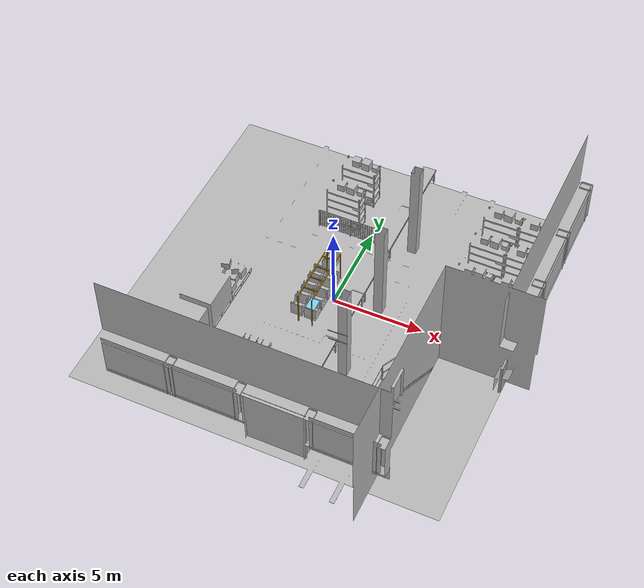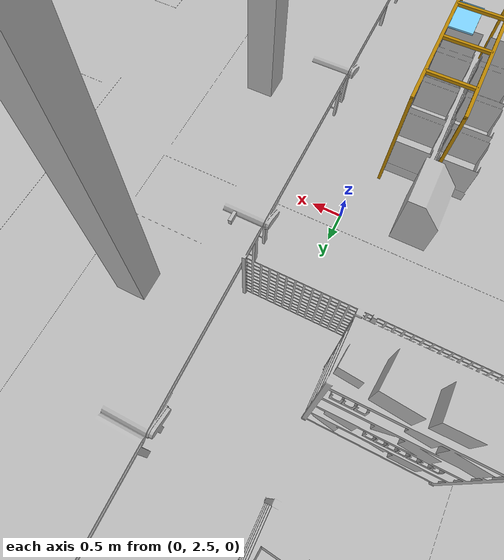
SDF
<sdf version="1.5">
 <world name="ariac">
  <scene><shadows>false</shadows></scene>
  <include><uri>model://sun</uri></include>
  <light name="camera_spot_light" type="spot">
   <pose>-10 10 10 0 -1 -0.8</pose>
   <diffuse>0.5 0.5 0.5 1</diffuse>
   <specular>0.1 0.1 0.1 1</specular>
   <direction>0 0 -1</direction>
   <attenuation>
    <range>20</range>
    <constant>0.5</constant>
    <linear>0.01</linear>
    <quadratic>0.001</quadratic>
   </attenuation>
   <cast_shadows>0</cast_shadows>
   <spot><inner_angle>0.6</inner_angle><outer_angle>1</outer_angle><falloff>1</falloff></spot>
  </light>
  <include><uri>model://workcell</uri><pose>0 0 0 0 0 1.57</pose></include>
  <include><uri>model://proximity_sensor</uri><pose>0.8 4.4 1 0 0 0</pose></include>
  <include><uri>model://laser_profiler</uri><pose>1.21816 4 1.35 -3.14159 1.5708 1.5708</pose></include>
  <include><uri>model://kit_tray</uri><pose>-0.5 -1.5 1.1 0 0 0</pose></include>
  <include><uri>model://deletion_wall</uri><pose>1.2 -4.1 1.4 0 0 1.5708</pose></include>
  <model name="conveyor_belt">
   <static>true</static>
   <pose>1.21 5 0.81 0 0 1.57</pose>
   <plugin name="conveyor_belt_plugin" filename="libROSConveyorBeltPlugin.so">
    <robot_namespace>/ariac</robot_namespace>
    <belt_start_velocity>0.0</belt_start_velocity>
    <velocity_axis>-1 0 0</velocity_axis>
    <contact_sensor_name>conveyor_belt_contact</contact_sensor_name>
   </plugin>
   <link name="belt">
    <pose>-5 0 0 0 0 0</pose>
    <sensor name="conveyor_belt_contact" type="contact">
     <update_rate>10</update_rate>
     <contact><collision>belt_collision</collision></contact>
    </sensor>
    <collision name="belt_collision">
     <geometry><box><size>19.62206 0.65461 0.18862</size></box></geometry>
     <surface>
      <friction>
       <ode><mu>0.0</mu><mu2>0.0</mu2></ode>
       <torsional><coefficient>1000.0</coefficient><patch_radius>0.1</patch_radius></torsional>
      </friction>
     </surface>
    </collision>
   </link>
  </model>
  <plugin filename="libROSPopulationPlugin.so" name="ros_object_population">
   <robot_namespace>/ariac</robot_namespace>
   <activation_topic>~/conveyor/control</activation_topic>
   <loop_forever>true</loop_forever>
   <frame>conveyor_belt</frame>
   <object_sequence>
    <object><time>8.0</time><type>coke_can</type></object>
    <object><time>4.0</time><type>cordless_drill</type><pose>0 0.1 0 0 0 0</pose></object>
    <object><time>12.0</time><type>beer</type><pose>0 -0.1 0 0 0 0</pose></object>
   </object_sequence>
  </plugin>
  <plugin filename="libROSAriacTaskManagerPlugin.so" name="task_manager">
   <robot_namespace>ariac_task_manager</robot_namespace>
   <team_start_service_name>/ariac/start_competition</team_start_service_name>
   <conveyor_activation_topic>~/conveyor/control</conveyor_activation_topic>
   <goals_topic>/ariac/orders</goals_topic>
   <goal>
    <start_time>0.0</start_time>
    <kit>
     <object><type>coke_can</type><pose>-1 2.5 0.2 0 0 0</pose></object>
     <object><type>cordless_drill/</type><pose>-1 2.5 0.2 0 0 0</pose></object>
     <object><type>beer</type><pose>-1 2.5 0.2 0 0 0</pose></object>
    </kit>
    <kit>
     <object><type>coke_can</type><pose>-1 2.5 0.2 0 0 0</pose></object>
     <object><type>cordless_drill/</type><pose>-1 2.5 0.2 0 0 0</pose></object>
     <object><type>beer</type><pose>-1 2.5 0.2 0 0 0</pose></object>
    </kit>
   </goal>
  </plugin>
 </world>
</sdf>

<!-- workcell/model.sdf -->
<sdf version="1.6">
  <model name="workcell">
    <static>true</static>
    <link name="link">
      <visual name="visual">
        <geometry>
          <mesh>
            <uri>model://workcell/meshes/mesh.dae</uri>
          </mesh>
        </geometry>
      </visual>

      <collision name="floor">
        <pose>0 0 -0.1 0 0 0</pose>
        <geometry>
          <box>
            <size>20.1026 20.1026 0.2</size>
          </box>
        </geometry>
      </collision>

      <collision name="wall1">
        <pose>4.13686 -10.02116 3.48855 0 0 0</pose>
        <geometry>
          <box>
            <size>12.07683 0.72902 6.97771</size>
          </box>
        </geometry>
      </collision>

      <collision name="wall2">
        <pose>-6.58151 -8.924 3.48855 0 0 0</pose>
        <geometry>
          <box>
            <size>10.59206 5.00198 6.97771</size>
          </box>
        </geometry>
      </collision>

      <collision name="wall3">
        <pose>-9.25721 0.6135 3.48855 0 0 0</pose>
        <geometry>
          <box>
            <size>0.72902 15.29079 6.97771</size>
          </box>
        </geometry>
      </collision>

      <collision name="rack1">
        <pose>7.35056 1.74430 1.41643054 0 0 0</pose>
        <geometry>
          <box>
            <size>0.84444041 1.95580823 2.83286108</size>
          </box>
        </geometry>
      </collision>

      <collision name="rack2">
        <pose>5.36795 1.74430 1.41643054 0 0 0</pose>
        <geometry>
          <box>
            <size>0.84444041 1.95580823 2.83286108</size>
          </box>
        </geometry>
      </collision>

      <collision name="rack3">
        <pose>7.00142 -7.64670 1.41643054 0 0 0</pose>
        <geometry>
          <box>
            <size>0.84444041 3.91161646 2.83286108</size>
          </box>
        </geometry>
      </collision>

      <collision name="rack4">
        <pose>4.97338 -7.64670 1.41643054 0 0 0</pose>
        <geometry>
          <box>
            <size>0.84444041 3.91161646 2.83286108</size>
          </box>
        </geometry>
      </collision>

      <collision name="rack5">
        <pose>2.66949 -7.64670 1.41643054 0 0 0</pose>
        <geometry>
          <box>
            <size>0.84444041 3.91161646 2.83286108</size>
          </box>
        </geometry>
      </collision>

      <collision name="large_pallet1">
        <pose>-3.33609 6.31883 1.04257 0 0 0</pose>
        <geometry>
          <box>
            <size>2.14726 1.79349 2.08514</size>
          </box>
        </geometry>
      </collision>

      <collision name="large_pallet2">
        <pose>-5.74492 6.31883 1.04257 0 0 0</pose>
        <geometry>
          <box>
            <size>2.14726 1.79349 2.08514</size>
          </box>
        </geometry>
      </collision>

      <collision name="large_pallet3">
        <pose>-7.55868 1.91644 1.04257 0 0 0</pose>
        <geometry>
          <box>
            <size>2.14726 1.79432 2.08514</size>
          </box>
        </geometry>
      </collision>

      <collision name="empty_pallet1">
        <pose>-5.29667 1.91644 0.1636 0 0 0</pose>
        <geometry>
          <box>
            <size>2.14726 1.79349 0.32720</size>
          </box>
        </geometry>
      </collision>

      <collision name="box_pallet1">
        <pose>-1.09806 6.31883 0.61958 0 0 0</pose>
        <geometry>
          <box>
            <size>2.14726 1.79349 1.23916</size>
          </box>
        </geometry>
      </collision>

      <collision name="pole1">
        <pose>5.02174 -2.39478 3.022075 0 0 0</pose>
        <geometry>
          <box>
            <size>0.49161 0.49161 6.04415</size>
          </box>
        </geometry>
      </collision>

      <collision name="pole2">
        <pose>0.47071 -2.39478 3.022075 0 0 0</pose>
        <geometry>
          <box>
            <size>0.49161 0.49161 6.04415</size>
          </box>
        </geometry>
      </collision>

      <collision name="pole3">
        <pose>-3.93786 -2.39478 3.022075 0 0 0</pose>
        <geometry>
          <box>
            <size>0.49161 0.49161 6.04415</size>
          </box>
        </geometry>
      </collision>

      <collision name="control_panel">
        <pose>2.07015 1.16224 0.561315 0 0 0</pose>
        <geometry>
          <box>
            <size>0.86733 0.6001 1.12263</size>
          </box>
        </geometry>
      </collision>

      <visual name="bin_frame_1">
        <pose>-2 1.08385 1 0 0 0</pose>
        <geometry>
          <box>
            <size>0.05 0.05 2.0</size>
          </box>
        </geometry>
        <material>
          <ambient>0.725490196 0.517647059 0 1</ambient>
          <diffuse>0.725490196 0.517647059 0 1</diffuse>
        </material>
      </visual>
      <collision name="bin_frame_1_collision">
        <pose>-2 1.08385 1 0 0 0</pose>
        <geometry>
          <box>
            <size>0.05 0.05 2.0</size>
          </box>
        </geometry>
      </collision>
      <visual name="bin_frame_2">
        <pose>1.5 1.08385 1 0 0 0</pose>
        <geometry>
          <box>
            <size>0.05 0.05 2.0</size>
          </box>
        </geometry>
        <material>
          <ambient>0.725490196 0.517647059 0 1</ambient>
          <diffuse>0.725490196 0.517647059 0 1</diffuse>
        </material>
      </visual>
      <collision name="bin_frame_2_collision">
        <pose>1.5 1.08385 1 0 0 0</pose>
        <geometry>
          <box>
            <size>0.05 0.05 2.0</size>
          </box>
        </geometry>
      </collision>
      <visual name="bin_frame_3">
        <pose>-0.25 1.08385 2.0 0 0 0</pose>
        <geometry>
          <box>
            <size>3.55 0.05 0.05</size>
          </box>
        </geometry>
        <material>
          <ambient>0.725490196 0.517647059 0 1</ambient>
          <diffuse>0.725490196 0.517647059 0 1</diffuse>
        </material>
      </visual>
      <collision name="bin_frame_3_collision">
        <pose>-0.25 1.08385 2.0 0 0 0</pose>
        <geometry>
          <box>
            <size>3.55 0.05 0.05</size>
          </box>
        </geometry>
      </collision>

      <visual name="bin_frame_4">
        <pose>-2 0.31434 1 0 0 0</pose>
        <geometry>
          <box>
            <size>0.05 0.05 2.0</size>
          </box>
        </geometry>
        <material>
          <ambient>0.725490196 0.517647059 0 1</ambient>
          <diffuse>0.725490196 0.517647059 0 1</diffuse>
        </material>
      </visual>
      <collision name="bin_frame_4_collision">
        <pose>-2 0.31434 1 0 0 0</pose>
        <geometry>
          <box>
            <size>0.05 0.05 2.0</size>
          </box>
        </geometry>
      </collision>
      <visual name="bin_frame_5">
        <pose>1.5 0.31434 1 0 0 0</pose>
        <geometry>
          <box>
            <size>0.05 0.05 2.0</size>
          </box>
        </geometry>
        <material>
          <ambient>0.725490196 0.517647059 0 1</ambient>
          <diffuse>0.725490196 0.517647059 0 1</diffuse>
        </material>
      </visual>
      <collision name="bin_frame_5_collision">
        <pose>1.5 0.31434 1 0 0 0</pose>
        <geometry>
          <box>
            <size>0.05 0.05 2.0</size>
          </box>
        </geometry>
      </collision>
      <visual name="bin_frame_6">
        <pose>-0.25 0.31434 2.0 0 0 0</pose>
        <geometry>
          <box>
            <size>3.55 0.05 0.05</size>
          </box>
        </geometry>
        <material>
          <ambient>0.725490196 0.517647059 0 1</ambient>
          <diffuse>0.725490196 0.517647059 0 1</diffuse>
        </material>
      </visual>
      <collision name="bin_frame_6_collision">
        <pose>-0.25 0.31434 2.0 0 0 0</pose>
        <geometry>
          <box>
            <size>3.55 0.05 0.05</size>
          </box>
        </geometry>
      </collision>

      <visual name="bin_frame_7">
        <pose>0.96768 0.699095 2.0 0 0 0</pose>
        <geometry>
          <box>
            <size>.05 0.76951 0.05</size>
          </box>
        </geometry>
        <material>
          <ambient>0.725490196 0.517647059 0 1</ambient>
          <diffuse>0.725490196 0.517647059 0 1</diffuse>
        </material>
      </visual>
      <collision name="bin_frame_7_collision">
        <pose>0.96768 0.699095 2.0 0 0 0</pose>
        <geometry>
          <box>
            <size>.05 0.76951 0.05</size>
          </box>
        </geometry>
      </collision>

      <visual name="bin_frame_8">
        <pose>0.20268 0.699095 2.0 0 0 0</pose>
        <geometry>
          <box>
            <size>.05 0.76951 0.05</size>
          </box>
        </geometry>
        <material>
          <ambient>0.725490196 0.517647059 0 1</ambient>
          <diffuse>0.725490196 0.517647059 0 1</diffuse>
        </material>
      </visual>
      <collision name="bin_frame_8_collision">
        <pose>0.20268 0.999095 2.0 0 0 0</pose>
        <geometry>
          <box>
            <size>.05 0.76951 0.05</size>
          </box>
        </geometry>
      </collision>

      <visual name="bin_frame_9">
        <pose>-0.56232 0.699095 2.0 0 0 0</pose>
        <geometry>
          <box>
            <size>.05 0.76951 0.05</size>
          </box>
        </geometry>
        <material>
          <ambient>0.725490196 0.517647059 0 1</ambient>
          <diffuse>0.725490196 0.517647059 0 1</diffuse>
        </material>
      </visual>
      <collision name="bin_frame_9_collision">
        <pose>-0.56232 0.999095 2.0 0 0 0</pose>
        <geometry>
          <box>
            <size>.05 0.76951 0.05</size>
          </box>
        </geometry>
      </collision>

      <visual name="bin_frame_10">
        <pose>-1.32732 0.699095 2.0 0 0 0</pose>
        <geometry>
          <box>
            <size>.05 0.76951 0.05</size>
          </box>
        </geometry>
        <material>
          <ambient>0.725490196 0.517647059 0 1</ambient>
          <diffuse>0.725490196 0.517647059 0 1</diffuse>
        </material>
      </visual>
      <collision name="bin_frame_10_collision">
        <pose>-1.32732 0.999095 2.0 0 0 0</pose>
        <geometry>
          <box>
            <size>.05 0.76951 0.05</size>
          </box>
        </geometry>
      </collision>
    </link>

  </model>
</sdf>

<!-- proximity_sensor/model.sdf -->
<sdf version="1.6">
  <model name="proximity_sick_mm12">
    <link name="body">
      <visual name="visual">
        <pose>0 0 0 0 1.5708 0</pose>
        <geometry>
          <cylinder>
            <radius>0.006</radius> <!-- diameter of sensing head -->
            <length>0.046</length> <!-- length of sensor body -->
          </cylinder>
        </geometry>
      </visual>
      <collision name="collision">
        <pose>0 0 0 0 1.5708 0</pose>
        <geometry>
          <cylinder>
            <radius>0.006</radius> <!-- diameter of sensing head -->
            <length>0.046</length> <!-- length of sensor body -->
          </cylinder>
        </geometry>
      </collision>
      <sensor name="proximity_sensor" type="ray">
        <plugin name="proximity_ray_plugin" filename="libROSProximityRayPlugin.so" >
          <robotNamespace>ariac</robotNamespace>
          <time_delay>0.02</time_delay><!-- this modifies the update rate of the ray sensor -->
          <!-- the ray sensor doesn't have setters for these yet unfortunately so they have to be set in the ray tags -->
        </plugin>

        <!-- using min angle of 0.005: -->
        <!-- dx = diameter / 0.01 - length -->
        <pose>-1.154 0 0 0 0 0</pose>                   <!-- -dx 0 0 0 0 0 -->
        <ray>
          <range>
            <min>1.214</min>                            <!-- dx + min range -->
            <max>1.274</max>                            <!-- dx + max range -->
            <resolution>0.001</resolution>
          </range>

          <!-- nothing below this line really needs to be modified upon change of sensor model -->

          <scan>
            <horizontal>
              <samples>10</samples>
              <resolution>1</resolution>
              <min_angle>-0.005</min_angle>
              <max_angle>0.005</max_angle>
            </horizontal>
            <vertical>
              <samples>10</samples>
              <resolution>1</resolution>
              <min_angle>-0.005</min_angle>
              <max_angle>0.005</max_angle>
            </vertical>
          </scan>
          <noise>
            <type>gaussian</type>
            <mean>0.0</mean>
            <stddev>0.01</stddev>
          </noise>
        </ray>

        <always_on>1</always_on>
        <visualize>false</visualize>
      </sensor>
      <gravity>false</gravity>
      <inertial>
        <mass>0.1</mass>
      </inertial>
    </link>
    <link name="cord">
      <gravity>false</gravity>
      <visual name="visual">
        <pose>-0.025 0 0 0 1.5708 0</pose>
        <geometry>
          <cylinder>
            <radius>0.001</radius> <!-- diameter of sensing head -->
            <length>0.02</length> <!-- length of sensor body -->
          </cylinder>
        </geometry>
      </visual>
      <collision name="collision">
        <pose>-0.025 0 0 0 1.5708 0</pose>
        <geometry>
          <cylinder>
            <radius>0.001</radius> <!-- diameter of sensing head -->
            <length>0.02</length> <!-- length of sensor body -->
          </cylinder>
        </geometry>
      </collision>
    </link>
  </model>
</sdf>

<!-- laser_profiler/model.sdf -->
<sdf version="1.6">
  <model name="laser-profiler-cognex-ds1101">
    <link name="link">
      <visual name="body">
        <geometry>
          <box>
            <size>0.093 0.05 0.167</size>
          </box>
        </geometry>
      </visual>
      <sensor name="laser_profiler" type="ray">
        <pose>0 0 0.06 0 0 0</pose>
        <plugin name="proximity_ray_plugin" filename="libgazebo_ros_laser.so" >
          <robotNamespace>ariac</robotNamespace>
          <frameName>laser_profiler</frameName>
          <topicName>laser_profiler</topicName>
        </plugin>
        <ray>
          <range>
            <min>0.135</min>
            <max>0.355</max>
            <resolution>0.001</resolution>
          </range>
          <scan>
            <horizontal>
              <samples>100</samples>
              <resolution>1</resolution>
              <min_angle>-0.235</min_angle>
              <max_angle>0.235</max_angle>
            </horizontal>
          </scan>

          <!-- nothing below this line really needs to be modified upon change of sensor model -->

          <noise>
            <type>gaussian</type>
            <mean>0.0</mean>
            <stddev>0.001</stddev>
          </noise>
        </ray>

        <always_on>1</always_on>
        <visualize>true</visualize>
      </sensor>
      <collision name='collision'>
        <pose>0 0 0 0 0 0</pose>
        <geometry>
          <box>
            <size>0.093 0.05 0.167</size>
          </box>
        </geometry>
      </collision>
      <gravity>false</gravity>
      <inertial>
        <mass>0.1</mass>
      </inertial>
    </link>
  </model>
</sdf>

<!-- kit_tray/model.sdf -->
<sdf version="1.6">
  <model name="kit_tray">
    <static>false</static>
    <link name="tray">
      <sensor name='kit_tray_contact' type='contact'>
        <update_rate>1</update_rate>
        <contact>
          <collision>tray_collision</collision>
        </contact>
      </sensor>
      <gravity>false</gravity>
      <collision name="tray_collision">
        <geometry>
          <box>
            <size>0.5 0.7 0.01</size>
          </box>
        </geometry>
      </collision>
      <collision name="tray_collision1">
        <pose>0.25 0 0.0127 0 0 0</pose>
        <geometry>
          <box>
            <size>0.001 0.7 0.0254</size>
          </box>
        </geometry>
      </collision>
      <visual name="tray_visual1">
        <pose>0.25 0 0.0127 0 0 0</pose>
        <geometry>
          <box>
            <size>0.001 0.7 0.0254</size>
          </box>
        </geometry>
        <material>
          <ambient>0.48627451 0.819607843 1 1</ambient>
          <diffuse>0.48627451 0.819607843 1 1</diffuse>
        </material>
      </visual>

      <collision name="tray_collision2">
        <pose>-0.25 0 0.0127 0 0 0</pose>
        <geometry>
          <box>
            <size>0.001 0.7 0.0254</size>
          </box>
        </geometry>
      </collision>
      <visual name="tray_visual2">
        <pose>-0.25 0 0.0127 0 0 0</pose>
        <geometry>
          <box>
            <size>0.001 0.7 0.0254</size>
          </box>
        </geometry>
        <material>
          <ambient>0.48627451 0.819607843 1 1</ambient>
          <diffuse>0.48627451 0.819607843 1 1</diffuse>
        </material>
      </visual>

      <collision name="tray_collision3">
        <pose>0 0.35 0.0127 0 0 0</pose>
        <geometry>
          <box>
            <size>0.5 0.001 0.0254</size>
          </box>
        </geometry>
      </collision>
      <visual name="tray_visual3">
        <pose>0 0.35 0.0127 0 0 0</pose>
        <geometry>
          <box>
            <size>0.5 0.001 0.0254</size>
          </box>
        </geometry>
        <material>
          <ambient>0.48627451 0.819607843 1 1</ambient>
          <diffuse>0.48627451 0.819607843 1 1</diffuse>
        </material>
      </visual>

      <collision name="tray_collision4">
        <pose>0 -0.35 0.0127 0 0 0</pose>
        <geometry>
          <box>
            <size>0.5 0.001 0.0254</size>
          </box>
        </geometry>
      </collision>
      <visual name="tray_visual4">
        <pose>0 -0.35 0.0127 0 0 0</pose>
        <geometry>
          <box>
            <size>0.5 0.001 0.0254</size>
          </box>
        </geometry>
        <material>
          <ambient>0.48627451 0.819607843 1 1</ambient>
          <diffuse>0.48627451 0.819607843 1 1</diffuse>
        </material>
      </visual>

      <visual name="visual">
        <geometry>
          <box>
            <size>0.5 0.7 0.01</size>
          </box>
        </geometry>
        <material>
          <ambient>0.48627451 0.819607843 1 1</ambient>
          <diffuse>0.48627451 0.819607843 1 1</diffuse>
        </material>
      </visual>
    </link>
    <allow_auto_disable>0</allow_auto_disable>
  </model>
</sdf>

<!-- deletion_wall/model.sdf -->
<sdf version="1.6">
  <model name="deletion_wall">
    <!-- add a link that is sensing collisions -->
    <static>true</static>
    <link name="sensing_link">
      <gravity>false</gravity>
      <sensor name='object_disposal_contact' type='contact'>
        <update_rate>10</update_rate>
        <contact>
           <collision>collision</collision>
        </contact>
      </sensor>
      <collision name="collision">
        <max_contacts>10</max_contacts>
        <geometry>
          <box>
            <size>0.1 1 1</size>
          </box>
        </geometry>
      </collision>
      <visual name='visual'>
        <geometry>
          <box>
            <size>0.1 1 1</size>
          </box>
        </geometry>
        <cast_shadows>0</cast_shadows>
        <!-- make invisible -->
        <transparency>100</transparency>
      </visual>
    </link>

    <!-- plugin for processing contact sensor output -->
    <plugin name="object_disposal_plugin" filename="libObjectDisposalPlugin.so">
      <contact_sensor_name>object_disposal_contact</contact_sensor_name>
      <contact_side_normal>1 0 0</contact_side_normal>
      <collision>collision</collision>
      <update_rate>5</update_rate>
    </plugin>

  </model>
</sdf>
